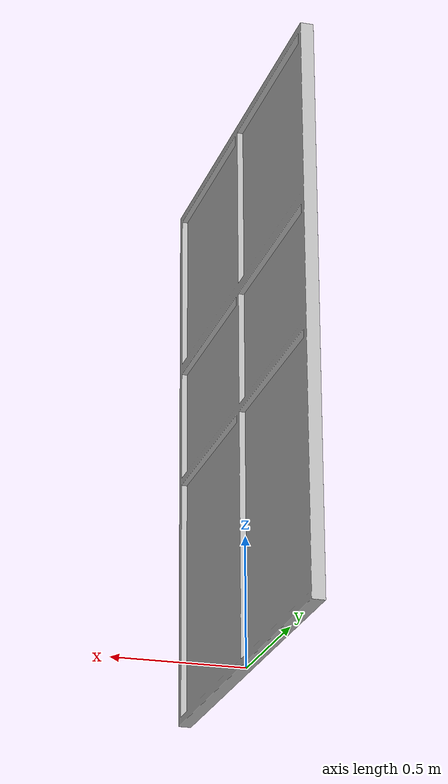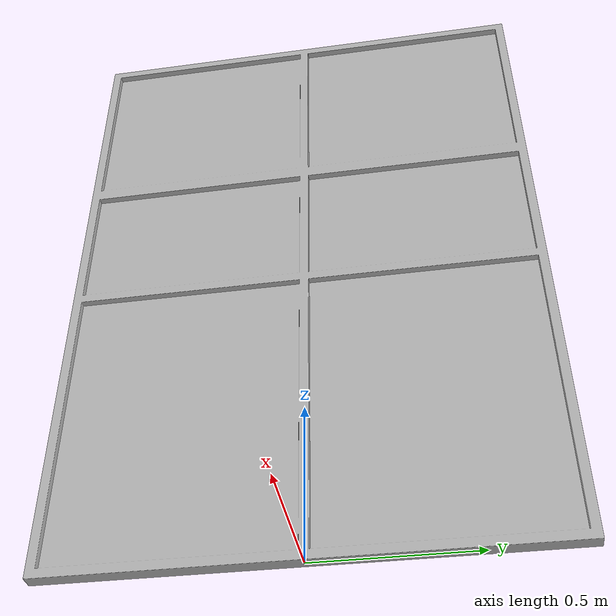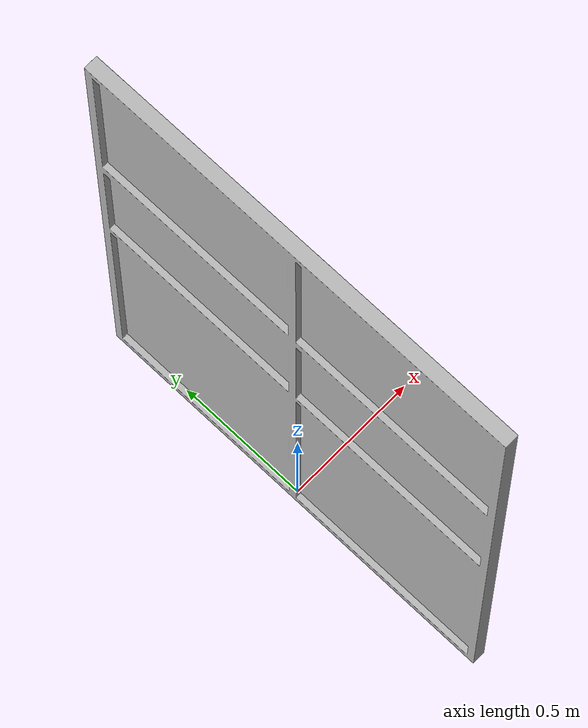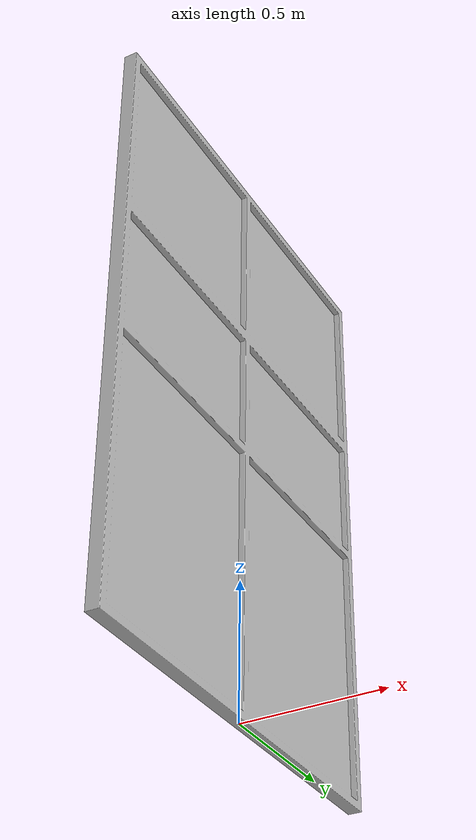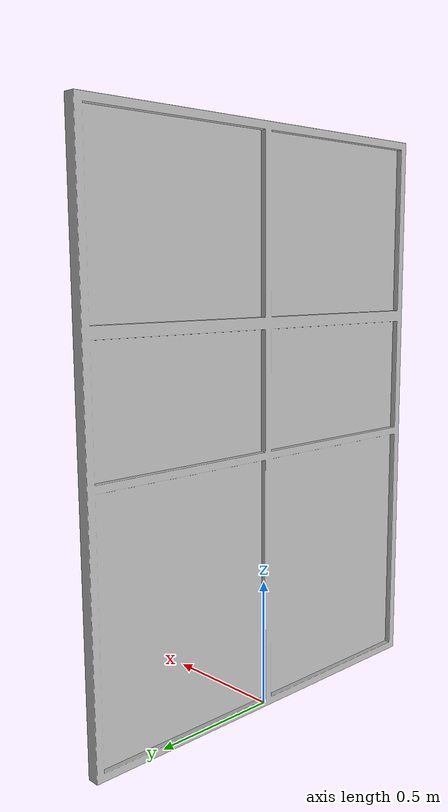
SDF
<?xml version='1.0'?>
<sdf version='1.4'>
  <model name='498'>
    <pose>0 0 0 0 0 0</pose>
    <static>true</static>
    <link name='link'>
      <collision name='collision'>
        <pose>0 0 0 0 0 0</pose>
        <geometry>
          <box>
            <size>0.0500001 1.6 2</size>
          </box>
        </geometry>
      </collision>
      <visual name='visual'>
        <pose>0 0 0 0 0 0</pose>
        <geometry>
          <mesh><uri>model://498/498.dae</uri></mesh>
        </geometry>
      </visual>
    </link>
  </model>
</sdf>
